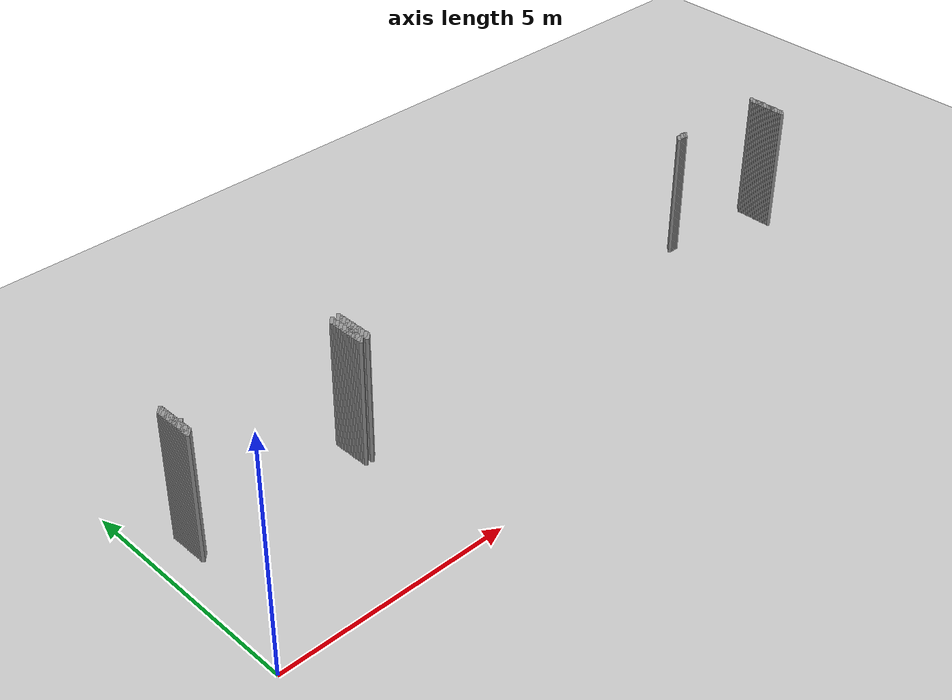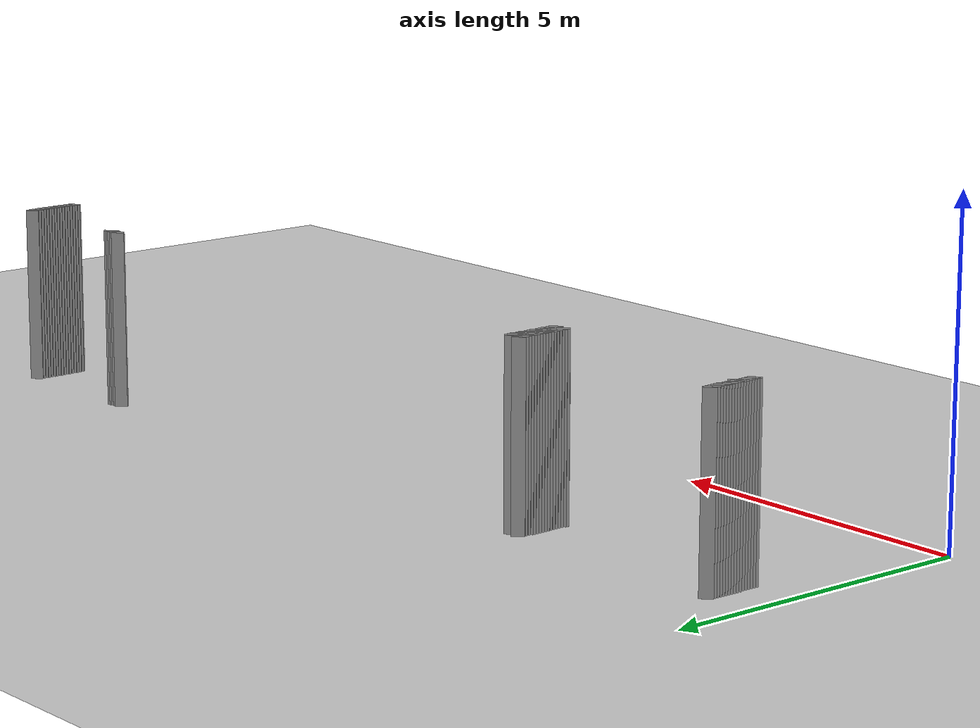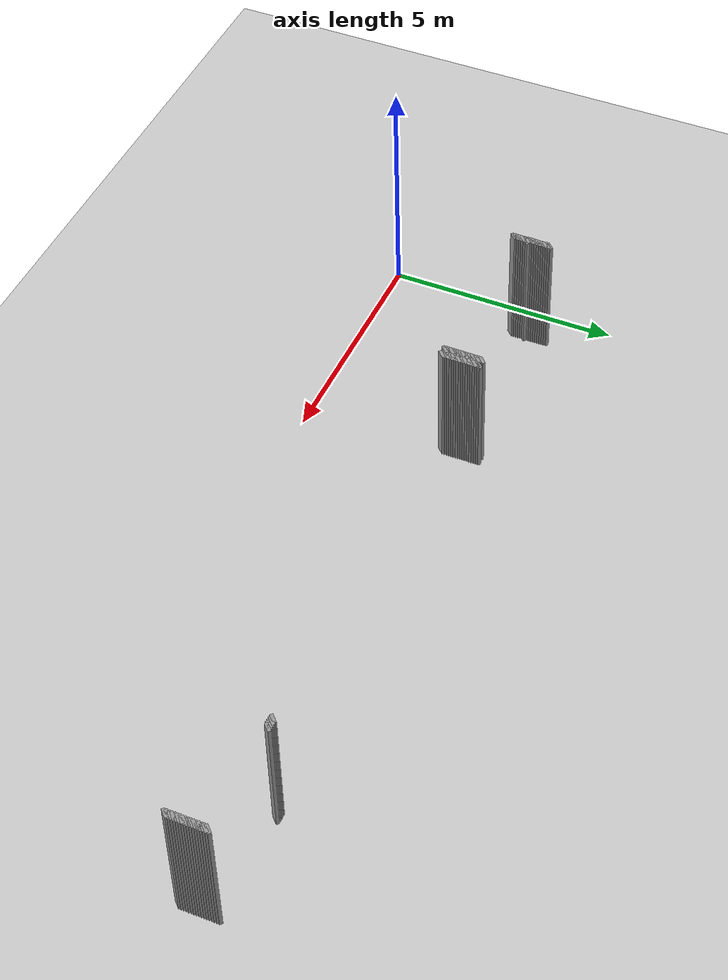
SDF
<sdf version="1.5">
 <world name="default">
  <include><uri>model://ground_plane</uri></include>
  <include><uri>model://sun</uri></include>
  <model name="grey_wall_2294">
   <static>1</static>
   <link name="link">
    <pose>14.0 3.85  1.4 0 0 -0.7853981633974394</pose>
    <collision name="collision">
     <geometry><box><size>0.07071067811865513 .2  2.8</size></box></geometry>
    </collision>
    <visual name="visual">
     <cast_shadows>0</cast_shadows>
     <geometry><box><size>0.07071067811865513 .2  2.8</size></box></geometry>
     <material>
      <script>
       <uri>model://grey_wall/materials/scripts</uri>
       <uri>model://grey_wall/materials/textures</uri>
       <name>vrc/grey_wall</name>
      </script>
     </material>
    </visual>
   </link>
  </model>
  <model name="grey_wall_2295">
   <static>1</static>
   <link name="link">
    <pose>14.05 3.85  1.4 0 0 -0.7853981633974394</pose>
    <collision name="collision">
     <geometry><box><size>0.07071067811865513 .2  2.8</size></box></geometry>
    </collision>
    <visual name="visual">
     <cast_shadows>0</cast_shadows>
     <geometry><box><size>0.07071067811865513 .2  2.8</size></box></geometry>
     <material>
      <script>
       <uri>model://grey_wall/materials/scripts</uri>
       <uri>model://grey_wall/materials/textures</uri>
       <name>vrc/grey_wall</name>
      </script>
     </material>
    </visual>
   </link>
  </model>
  <model name="grey_wall_2296">
   <static>1</static>
   <link name="link">
    <pose>14.100000000000001 3.85  1.4 0 0 -0.7853981633974394</pose>
    <collision name="collision">
     <geometry><box><size>0.07071067811865513 .2  2.8</size></box></geometry>
    </collision>
    <visual name="visual">
     <cast_shadows>0</cast_shadows>
     <geometry><box><size>0.07071067811865513 .2  2.8</size></box></geometry>
     <material>
      <script>
       <uri>model://grey_wall/materials/scripts</uri>
       <uri>model://grey_wall/materials/textures</uri>
       <name>vrc/grey_wall</name>
      </script>
     </material>
    </visual>
   </link>
  </model>
  <model name="grey_wall_2297">
   <static>1</static>
   <link name="link">
    <pose>14.15 3.85  1.4 0 0 -0.7853981633974394</pose>
    <collision name="collision">
     <geometry><box><size>0.07071067811865513 .2  2.8</size></box></geometry>
    </collision>
    <visual name="visual">
     <cast_shadows>0</cast_shadows>
     <geometry><box><size>0.07071067811865513 .2  2.8</size></box></geometry>
     <material>
      <script>
       <uri>model://grey_wall/materials/scripts</uri>
       <uri>model://grey_wall/materials/textures</uri>
       <name>vrc/grey_wall</name>
      </script>
     </material>
    </visual>
   </link>
  </model>
  <model name="grey_wall_2298">
   <static>1</static>
   <link name="link">
    <pose>14.200000000000001 3.85  1.4 0 0 -0.7853981633974394</pose>
    <collision name="collision">
     <geometry><box><size>0.07071067811865513 .2  2.8</size></box></geometry>
    </collision>
    <visual name="visual">
     <cast_shadows>0</cast_shadows>
     <geometry><box><size>0.07071067811865513 .2  2.8</size></box></geometry>
     <material>
      <script>
       <uri>model://grey_wall/materials/scripts</uri>
       <uri>model://grey_wall/materials/textures</uri>
       <name>vrc/grey_wall</name>
      </script>
     </material>
    </visual>
   </link>
  </model>
  <model name="grey_wall_2299">
   <static>1</static>
   <link name="link">
    <pose>16.45 3.85  1.4 0 0 -0.7853981633974749</pose>
    <collision name="collision">
     <geometry><box><size>0.07071067811865261 .2  2.8</size></box></geometry>
    </collision>
    <visual name="visual">
     <cast_shadows>0</cast_shadows>
     <geometry><box><size>0.07071067811865261 .2  2.8</size></box></geometry>
     <material>
      <script>
       <uri>model://grey_wall/materials/scripts</uri>
       <uri>model://grey_wall/materials/textures</uri>
       <name>vrc/grey_wall</name>
      </script>
     </material>
    </visual>
   </link>
  </model>
  <model name="grey_wall_2300">
   <static>1</static>
   <link name="link">
    <pose>0.75 3.8000000000000003  1.4 0 0 -0.7853981633974461</pose>
    <collision name="collision">
     <geometry><box><size>0.07071067811865465 .2  2.8</size></box></geometry>
    </collision>
    <visual name="visual">
     <cast_shadows>0</cast_shadows>
     <geometry><box><size>0.07071067811865465 .2  2.8</size></box></geometry>
     <material>
      <script>
       <uri>model://grey_wall/materials/scripts</uri>
       <uri>model://grey_wall/materials/textures</uri>
       <name>vrc/grey_wall</name>
      </script>
     </material>
    </visual>
   </link>
  </model>
  <model name="grey_wall_2301">
   <static>1</static>
   <link name="link">
    <pose>4.45 3.8000000000000003  1.4 0 0 -0.7853981633974394</pose>
    <collision name="collision">
     <geometry><box><size>0.07071067811865513 .2  2.8</size></box></geometry>
    </collision>
    <visual name="visual">
     <cast_shadows>0</cast_shadows>
     <geometry><box><size>0.07071067811865513 .2  2.8</size></box></geometry>
     <material>
      <script>
       <uri>model://grey_wall/materials/scripts</uri>
       <uri>model://grey_wall/materials/textures</uri>
       <name>vrc/grey_wall</name>
      </script>
     </material>
    </visual>
   </link>
  </model>
  <model name="grey_wall_2302">
   <static>1</static>
   <link name="link">
    <pose>4.6000000000000005 3.8000000000000003  1.4 0 0 -0.7853981633974394</pose>
    <collision name="collision">
     <geometry><box><size>0.07071067811865513 .2  2.8</size></box></geometry>
    </collision>
    <visual name="visual">
     <cast_shadows>0</cast_shadows>
     <geometry><box><size>0.07071067811865513 .2  2.8</size></box></geometry>
     <material>
      <script>
       <uri>model://grey_wall/materials/scripts</uri>
       <uri>model://grey_wall/materials/textures</uri>
       <name>vrc/grey_wall</name>
      </script>
     </material>
    </visual>
   </link>
  </model>
  <model name="grey_wall_2303">
   <static>1</static>
   <link name="link">
    <pose>16.45 3.8000000000000003  1.4 0 0 -0.7853981633974749</pose>
    <collision name="collision">
     <geometry><box><size>0.07071067811865261 .2  2.8</size></box></geometry>
    </collision>
    <visual name="visual">
     <cast_shadows>0</cast_shadows>
     <geometry><box><size>0.07071067811865261 .2  2.8</size></box></geometry>
     <material>
      <script>
       <uri>model://grey_wall/materials/scripts</uri>
       <uri>model://grey_wall/materials/textures</uri>
       <name>vrc/grey_wall</name>
      </script>
     </material>
    </visual>
   </link>
  </model>
  <model name="grey_wall_2304">
   <static>1</static>
   <link name="link">
    <pose>0.75 3.75  1.4 0 0 -0.7853981633974461</pose>
    <collision name="collision">
     <geometry><box><size>0.07071067811865465 .2  2.8</size></box></geometry>
    </collision>
    <visual name="visual">
     <cast_shadows>0</cast_shadows>
     <geometry><box><size>0.07071067811865465 .2  2.8</size></box></geometry>
     <material>
      <script>
       <uri>model://grey_wall/materials/scripts</uri>
       <uri>model://grey_wall/materials/textures</uri>
       <name>vrc/grey_wall</name>
      </script>
     </material>
    </visual>
   </link>
  </model>
  <model name="grey_wall_2305">
   <static>1</static>
   <link name="link">
    <pose>4.45 3.75  1.4 0 0 -0.7853981633974394</pose>
    <collision name="collision">
     <geometry><box><size>0.07071067811865513 .2  2.8</size></box></geometry>
    </collision>
    <visual name="visual">
     <cast_shadows>0</cast_shadows>
     <geometry><box><size>0.07071067811865513 .2  2.8</size></box></geometry>
     <material>
      <script>
       <uri>model://grey_wall/materials/scripts</uri>
       <uri>model://grey_wall/materials/textures</uri>
       <name>vrc/grey_wall</name>
      </script>
     </material>
    </visual>
   </link>
  </model>
  <model name="grey_wall_2306">
   <static>1</static>
   <link name="link">
    <pose>4.6000000000000005 3.75  1.4 0 0 -0.7853981633974394</pose>
    <collision name="collision">
     <geometry><box><size>0.07071067811865513 .2  2.8</size></box></geometry>
    </collision>
    <visual name="visual">
     <cast_shadows>0</cast_shadows>
     <geometry><box><size>0.07071067811865513 .2  2.8</size></box></geometry>
     <material>
      <script>
       <uri>model://grey_wall/materials/scripts</uri>
       <uri>model://grey_wall/materials/textures</uri>
       <name>vrc/grey_wall</name>
      </script>
     </material>
    </visual>
   </link>
  </model>
  <model name="grey_wall_2307">
   <static>1</static>
   <link name="link">
    <pose>16.45 3.75  1.4 0 0 -0.7853981633974749</pose>
    <collision name="collision">
     <geometry><box><size>0.07071067811865261 .2  2.8</size></box></geometry>
    </collision>
    <visual name="visual">
     <cast_shadows>0</cast_shadows>
     <geometry><box><size>0.07071067811865261 .2  2.8</size></box></geometry>
     <material>
      <script>
       <uri>model://grey_wall/materials/scripts</uri>
       <uri>model://grey_wall/materials/textures</uri>
       <name>vrc/grey_wall</name>
      </script>
     </material>
    </visual>
   </link>
  </model>
  <model name="grey_wall_2308">
   <static>1</static>
   <link name="link">
    <pose>0.75 3.7  1.4 0 0 -0.7853981633974461</pose>
    <collision name="collision">
     <geometry><box><size>0.07071067811865465 .2  2.8</size></box></geometry>
    </collision>
    <visual name="visual">
     <cast_shadows>0</cast_shadows>
     <geometry><box><size>0.07071067811865465 .2  2.8</size></box></geometry>
     <material>
      <script>
       <uri>model://grey_wall/materials/scripts</uri>
       <uri>model://grey_wall/materials/textures</uri>
       <name>vrc/grey_wall</name>
      </script>
     </material>
    </visual>
   </link>
  </model>
  <model name="grey_wall_2309">
   <static>1</static>
   <link name="link">
    <pose>4.45 3.7  1.4 0 0 -0.7853981633974394</pose>
    <collision name="collision">
     <geometry><box><size>0.07071067811865513 .2  2.8</size></box></geometry>
    </collision>
    <visual name="visual">
     <cast_shadows>0</cast_shadows>
     <geometry><box><size>0.07071067811865513 .2  2.8</size></box></geometry>
     <material>
      <script>
       <uri>model://grey_wall/materials/scripts</uri>
       <uri>model://grey_wall/materials/textures</uri>
       <name>vrc/grey_wall</name>
      </script>
     </material>
    </visual>
   </link>
  </model>
  <model name="grey_wall_2310">
   <static>1</static>
   <link name="link">
    <pose>4.6000000000000005 3.7  1.4 0 0 -0.7853981633974394</pose>
    <collision name="collision">
     <geometry><box><size>0.07071067811865513 .2  2.8</size></box></geometry>
    </collision>
    <visual name="visual">
     <cast_shadows>0</cast_shadows>
     <geometry><box><size>0.07071067811865513 .2  2.8</size></box></geometry>
     <material>
      <script>
       <uri>model://grey_wall/materials/scripts</uri>
       <uri>model://grey_wall/materials/textures</uri>
       <name>vrc/grey_wall</name>
      </script>
     </material>
    </visual>
   </link>
  </model>
  <model name="grey_wall_2311">
   <static>1</static>
   <link name="link">
    <pose>16.45 3.7  1.4 0 0 -0.7853981633974749</pose>
    <collision name="collision">
     <geometry><box><size>0.07071067811865261 .2  2.8</size></box></geometry>
    </collision>
    <visual name="visual">
     <cast_shadows>0</cast_shadows>
     <geometry><box><size>0.07071067811865261 .2  2.8</size></box></geometry>
     <material>
      <script>
       <uri>model://grey_wall/materials/scripts</uri>
       <uri>model://grey_wall/materials/textures</uri>
       <name>vrc/grey_wall</name>
      </script>
     </material>
    </visual>
   </link>
  </model>
  <model name="grey_wall_2312">
   <static>1</static>
   <link name="link">
    <pose>0.75 3.6500000000000004  1.4 0 0 -0.7853981633974461</pose>
    <collision name="collision">
     <geometry><box><size>0.07071067811865465 .2  2.8</size></box></geometry>
    </collision>
    <visual name="visual">
     <cast_shadows>0</cast_shadows>
     <geometry><box><size>0.07071067811865465 .2  2.8</size></box></geometry>
     <material>
      <script>
       <uri>model://grey_wall/materials/scripts</uri>
       <uri>model://grey_wall/materials/textures</uri>
       <name>vrc/grey_wall</name>
      </script>
     </material>
    </visual>
   </link>
  </model>
  <model name="grey_wall_2313">
   <static>1</static>
   <link name="link">
    <pose>4.45 3.6500000000000004  1.4 0 0 -0.7853981633974394</pose>
    <collision name="collision">
     <geometry><box><size>0.07071067811865513 .2  2.8</size></box></geometry>
    </collision>
    <visual name="visual">
     <cast_shadows>0</cast_shadows>
     <geometry><box><size>0.07071067811865513 .2  2.8</size></box></geometry>
     <material>
      <script>
       <uri>model://grey_wall/materials/scripts</uri>
       <uri>model://grey_wall/materials/textures</uri>
       <name>vrc/grey_wall</name>
      </script>
     </material>
    </visual>
   </link>
  </model>
  <model name="grey_wall_2314">
   <static>1</static>
   <link name="link">
    <pose>4.6000000000000005 3.6500000000000004  1.4 0 0 -0.7853981633974394</pose>
    <collision name="collision">
     <geometry><box><size>0.07071067811865513 .2  2.8</size></box></geometry>
    </collision>
    <visual name="visual">
     <cast_shadows>0</cast_shadows>
     <geometry><box><size>0.07071067811865513 .2  2.8</size></box></geometry>
     <material>
      <script>
       <uri>model://grey_wall/materials/scripts</uri>
       <uri>model://grey_wall/materials/textures</uri>
       <name>vrc/grey_wall</name>
      </script>
     </material>
    </visual>
   </link>
  </model>
  <model name="grey_wall_2315">
   <static>1</static>
   <link name="link">
    <pose>16.45 3.6500000000000004  1.4 0 0 -0.7853981633974749</pose>
    <collision name="collision">
     <geometry><box><size>0.07071067811865261 .2  2.8</size></box></geometry>
    </collision>
    <visual name="visual">
     <cast_shadows>0</cast_shadows>
     <geometry><box><size>0.07071067811865261 .2  2.8</size></box></geometry>
     <material>
      <script>
       <uri>model://grey_wall/materials/scripts</uri>
       <uri>model://grey_wall/materials/textures</uri>
       <name>vrc/grey_wall</name>
      </script>
     </material>
    </visual>
   </link>
  </model>
  <model name="grey_wall_2316">
   <static>1</static>
   <link name="link">
    <pose>0.75 3.6  1.4 0 0 -0.7853981633974461</pose>
    <collision name="collision">
     <geometry><box><size>0.07071067811865465 .2  2.8</size></box></geometry>
    </collision>
    <visual name="visual">
     <cast_shadows>0</cast_shadows>
     <geometry><box><size>0.07071067811865465 .2  2.8</size></box></geometry>
     <material>
      <script>
       <uri>model://grey_wall/materials/scripts</uri>
       <uri>model://grey_wall/materials/textures</uri>
       <name>vrc/grey_wall</name>
      </script>
     </material>
    </visual>
   </link>
  </model>
  <model name="grey_wall_2317">
   <static>1</static>
   <link name="link">
    <pose>4.45 3.6  1.4 0 0 -0.7853981633974394</pose>
    <collision name="collision">
     <geometry><box><size>0.07071067811865513 .2  2.8</size></box></geometry>
    </collision>
    <visual name="visual">
     <cast_shadows>0</cast_shadows>
     <geometry><box><size>0.07071067811865513 .2  2.8</size></box></geometry>
     <material>
      <script>
       <uri>model://grey_wall/materials/scripts</uri>
       <uri>model://grey_wall/materials/textures</uri>
       <name>vrc/grey_wall</name>
      </script>
     </material>
    </visual>
   </link>
  </model>
  <model name="grey_wall_2318">
   <static>1</static>
   <link name="link">
    <pose>4.6000000000000005 3.6  1.4 0 0 -0.7853981633974394</pose>
    <collision name="collision">
     <geometry><box><size>0.07071067811865513 .2  2.8</size></box></geometry>
    </collision>
    <visual name="visual">
     <cast_shadows>0</cast_shadows>
     <geometry><box><size>0.07071067811865513 .2  2.8</size></box></geometry>
     <material>
      <script>
       <uri>model://grey_wall/materials/scripts</uri>
       <uri>model://grey_wall/materials/textures</uri>
       <name>vrc/grey_wall</name>
      </script>
     </material>
    </visual>
   </link>
  </model>
  <model name="grey_wall_2319">
   <static>1</static>
   <link name="link">
    <pose>16.45 3.6  1.4 0 0 -0.7853981633974749</pose>
    <collision name="collision">
     <geometry><box><size>0.07071067811865261 .2  2.8</size></box></geometry>
    </collision>
    <visual name="visual">
     <cast_shadows>0</cast_shadows>
     <geometry><box><size>0.07071067811865261 .2  2.8</size></box></geometry>
     <material>
      <script>
       <uri>model://grey_wall/materials/scripts</uri>
       <uri>model://grey_wall/materials/textures</uri>
       <name>vrc/grey_wall</name>
      </script>
     </material>
    </visual>
   </link>
  </model>
  <model name="grey_wall_2320">
   <static>1</static>
   <link name="link">
    <pose>0.75 3.5500000000000003  1.4 0 0 -0.7853981633974461</pose>
    <collision name="collision">
     <geometry><box><size>0.07071067811865465 .2  2.8</size></box></geometry>
    </collision>
    <visual name="visual">
     <cast_shadows>0</cast_shadows>
     <geometry><box><size>0.07071067811865465 .2  2.8</size></box></geometry>
     <material>
      <script>
       <uri>model://grey_wall/materials/scripts</uri>
       <uri>model://grey_wall/materials/textures</uri>
       <name>vrc/grey_wall</name>
      </script>
     </material>
    </visual>
   </link>
  </model>
  <model name="grey_wall_2321">
   <static>1</static>
   <link name="link">
    <pose>4.45 3.5500000000000003  1.4 0 0 -0.7853981633974394</pose>
    <collision name="collision">
     <geometry><box><size>0.07071067811865513 .2  2.8</size></box></geometry>
    </collision>
    <visual name="visual">
     <cast_shadows>0</cast_shadows>
     <geometry><box><size>0.07071067811865513 .2  2.8</size></box></geometry>
     <material>
      <script>
       <uri>model://grey_wall/materials/scripts</uri>
       <uri>model://grey_wall/materials/textures</uri>
       <name>vrc/grey_wall</name>
      </script>
     </material>
    </visual>
   </link>
  </model>
  <model name="grey_wall_2322">
   <static>1</static>
   <link name="link">
    <pose>4.6000000000000005 3.5500000000000003  1.4 0 0 -0.7853981633974394</pose>
    <collision name="collision">
     <geometry><box><size>0.07071067811865513 .2  2.8</size></box></geometry>
    </collision>
    <visual name="visual">
     <cast_shadows>0</cast_shadows>
     <geometry><box><size>0.07071067811865513 .2  2.8</size></box></geometry>
     <material>
      <script>
       <uri>model://grey_wall/materials/scripts</uri>
       <uri>model://grey_wall/materials/textures</uri>
       <name>vrc/grey_wall</name>
      </script>
     </material>
    </visual>
   </link>
  </model>
  <model name="grey_wall_2323">
   <static>1</static>
   <link name="link">
    <pose>16.45 3.5500000000000003  1.4 0 0 -0.7853981633974749</pose>
    <collision name="collision">
     <geometry><box><size>0.07071067811865261 .2  2.8</size></box></geometry>
    </collision>
    <visual name="visual">
     <cast_shadows>0</cast_shadows>
     <geometry><box><size>0.07071067811865261 .2  2.8</size></box></geometry>
     <material>
      <script>
       <uri>model://grey_wall/materials/scripts</uri>
       <uri>model://grey_wall/materials/textures</uri>
       <name>vrc/grey_wall</name>
      </script>
     </material>
    </visual>
   </link>
  </model>
  <model name="grey_wall_2324">
   <static>1</static>
   <link name="link">
    <pose>0.75 3.5  1.4 0 0 -0.7853981633974461</pose>
    <collision name="collision">
     <geometry><box><size>0.07071067811865465 .2  2.8</size></box></geometry>
    </collision>
    <visual name="visual">
     <cast_shadows>0</cast_shadows>
     <geometry><box><size>0.07071067811865465 .2  2.8</size></box></geometry>
     <material>
      <script>
       <uri>model://grey_wall/materials/scripts</uri>
       <uri>model://grey_wall/materials/textures</uri>
       <name>vrc/grey_wall</name>
      </script>
     </material>
    </visual>
   </link>
  </model>
  <model name="grey_wall_2325">
   <static>1</static>
   <link name="link">
    <pose>4.45 3.5  1.4 0 0 -0.7853981633974394</pose>
    <collision name="collision">
     <geometry><box><size>0.07071067811865513 .2  2.8</size></box></geometry>
    </collision>
    <visual name="visual">
     <cast_shadows>0</cast_shadows>
     <geometry><box><size>0.07071067811865513 .2  2.8</size></box></geometry>
     <material>
      <script>
       <uri>model://grey_wall/materials/scripts</uri>
       <uri>model://grey_wall/materials/textures</uri>
       <name>vrc/grey_wall</name>
      </script>
     </material>
    </visual>
   </link>
  </model>
  <model name="grey_wall_2326">
   <static>1</static>
   <link name="link">
    <pose>4.6000000000000005 3.5  1.4 0 0 -0.7853981633974394</pose>
    <collision name="collision">
     <geometry><box><size>0.07071067811865513 .2  2.8</size></box></geometry>
    </collision>
    <visual name="visual">
     <cast_shadows>0</cast_shadows>
     <geometry><box><size>0.07071067811865513 .2  2.8</size></box></geometry>
     <material>
      <script>
       <uri>model://grey_wall/materials/scripts</uri>
       <uri>model://grey_wall/materials/textures</uri>
       <name>vrc/grey_wall</name>
      </script>
     </material>
    </visual>
   </link>
  </model>
  <model name="grey_wall_2327">
   <static>1</static>
   <link name="link">
    <pose>16.45 3.5  1.4 0 0 -0.7853981633974749</pose>
    <collision name="collision">
     <geometry><box><size>0.07071067811865261 .2  2.8</size></box></geometry>
    </collision>
    <visual name="visual">
     <cast_shadows>0</cast_shadows>
     <geometry><box><size>0.07071067811865261 .2  2.8</size></box></geometry>
     <material>
      <script>
       <uri>model://grey_wall/materials/scripts</uri>
       <uri>model://grey_wall/materials/textures</uri>
       <name>vrc/grey_wall</name>
      </script>
     </material>
    </visual>
   </link>
  </model>
  <model name="grey_wall_2328">
   <static>1</static>
   <link name="link">
    <pose>0.75 3.45  1.4 0 0 -0.7853981633974461</pose>
    <collision name="collision">
     <geometry><box><size>0.07071067811865465 .2  2.8</size></box></geometry>
    </collision>
    <visual name="visual">
     <cast_shadows>0</cast_shadows>
     <geometry><box><size>0.07071067811865465 .2  2.8</size></box></geometry>
     <material>
      <script>
       <uri>model://grey_wall/materials/scripts</uri>
       <uri>model://grey_wall/materials/textures</uri>
       <name>vrc/grey_wall</name>
      </script>
     </material>
    </visual>
   </link>
  </model>
  <model name="grey_wall_2329">
   <static>1</static>
   <link name="link">
    <pose>4.45 3.45  1.4 0 0 -0.7853981633974394</pose>
    <collision name="collision">
     <geometry><box><size>0.07071067811865513 .2  2.8</size></box></geometry>
    </collision>
    <visual name="visual">
     <cast_shadows>0</cast_shadows>
     <geometry><box><size>0.07071067811865513 .2  2.8</size></box></geometry>
     <material>
      <script>
       <uri>model://grey_wall/materials/scripts</uri>
       <uri>model://grey_wall/materials/textures</uri>
       <name>vrc/grey_wall</name>
      </script>
     </material>
    </visual>
   </link>
  </model>
  <model name="grey_wall_2330">
   <static>1</static>
   <link name="link">
    <pose>4.6000000000000005 3.45  1.4 0 0 -0.7853981633974394</pose>
    <collision name="collision">
     <geometry><box><size>0.07071067811865513 .2  2.8</size></box></geometry>
    </collision>
    <visual name="visual">
     <cast_shadows>0</cast_shadows>
     <geometry><box><size>0.07071067811865513 .2  2.8</size></box></geometry>
     <material>
      <script>
       <uri>model://grey_wall/materials/scripts</uri>
       <uri>model://grey_wall/materials/textures</uri>
       <name>vrc/grey_wall</name>
      </script>
     </material>
    </visual>
   </link>
  </model>
  <model name="grey_wall_2331">
   <static>1</static>
   <link name="link">
    <pose>16.45 3.45  1.4 0 0 -0.7853981633974749</pose>
    <collision name="collision">
     <geometry><box><size>0.07071067811865261 .2  2.8</size></box></geometry>
    </collision>
    <visual name="visual">
     <cast_shadows>0</cast_shadows>
     <geometry><box><size>0.07071067811865261 .2  2.8</size></box></geometry>
     <material>
      <script>
       <uri>model://grey_wall/materials/scripts</uri>
       <uri>model://grey_wall/materials/textures</uri>
       <name>vrc/grey_wall</name>
      </script>
     </material>
    </visual>
   </link>
  </model>
  <model name="grey_wall_2332">
   <static>1</static>
   <link name="link">
    <pose>0.75 3.4000000000000004  1.4 0 0 -0.7853981633974461</pose>
    <collision name="collision">
     <geometry><box><size>0.07071067811865465 .2  2.8</size></box></geometry>
    </collision>
    <visual name="visual">
     <cast_shadows>0</cast_shadows>
     <geometry><box><size>0.07071067811865465 .2  2.8</size></box></geometry>
     <material>
      <script>
       <uri>model://grey_wall/materials/scripts</uri>
       <uri>model://grey_wall/materials/textures</uri>
       <name>vrc/grey_wall</name>
      </script>
     </material>
    </visual>
   </link>
  </model>
  <model name="grey_wall_2333">
   <static>1</static>
   <link name="link">
    <pose>4.45 3.4000000000000004  1.4 0 0 -0.7853981633974394</pose>
    <collision name="collision">
     <geometry><box><size>0.07071067811865513 .2  2.8</size></box></geometry>
    </collision>
    <visual name="visual">
     <cast_shadows>0</cast_shadows>
     <geometry><box><size>0.07071067811865513 .2  2.8</size></box></geometry>
     <material>
      <script>
       <uri>model://grey_wall/materials/scripts</uri>
       <uri>model://grey_wall/materials/textures</uri>
       <name>vrc/grey_wall</name>
      </script>
     </material>
    </visual>
   </link>
  </model>
  <model name="grey_wall_2334">
   <static>1</static>
   <link name="link">
    <pose>4.6000000000000005 3.4000000000000004  1.4 0 0 -0.7853981633974394</pose>
    <collision name="collision">
     <geometry><box><size>0.07071067811865513 .2  2.8</size></box></geometry>
    </collision>
    <visual name="visual">
     <cast_shadows>0</cast_shadows>
     <geometry><box><size>0.07071067811865513 .2  2.8</size></box></geometry>
     <material>
      <script>
       <uri>model://grey_wall/materials/scripts</uri>
       <uri>model://grey_wall/materials/textures</uri>
       <name>vrc/grey_wall</name>
      </script>
     </material>
    </visual>
   </link>
  </model>
  <model name="grey_wall_2335">
   <static>1</static>
   <link name="link">
    <pose>16.45 3.4000000000000004  1.4 0 0 -0.7853981633974749</pose>
    <collision name="collision">
     <geometry><box><size>0.07071067811865261 .2  2.8</size></box></geometry>
    </collision>
    <visual name="visual">
     <cast_shadows>0</cast_shadows>
     <geometry><box><size>0.07071067811865261 .2  2.8</size></box></geometry>
     <material>
      <script>
       <uri>model://grey_wall/materials/scripts</uri>
       <uri>model://grey_wall/materials/textures</uri>
       <name>vrc/grey_wall</name>
      </script>
     </material>
    </visual>
   </link>
  </model>
  <model name="grey_wall_2336">
   <static>1</static>
   <link name="link">
    <pose>0.75 3.35  1.4 0 0 -0.7853981633974461</pose>
    <collision name="collision">
     <geometry><box><size>0.07071067811865465 .2  2.8</size></box></geometry>
    </collision>
    <visual name="visual">
     <cast_shadows>0</cast_shadows>
     <geometry><box><size>0.07071067811865465 .2  2.8</size></box></geometry>
     <material>
      <script>
       <uri>model://grey_wall/materials/scripts</uri>
       <uri>model://grey_wall/materials/textures</uri>
       <name>vrc/grey_wall</name>
      </script>
     </material>
    </visual>
   </link>
  </model>
  <model name="grey_wall_2337">
   <static>1</static>
   <link name="link">
    <pose>4.45 3.35  1.4 0 0 -0.7853981633974394</pose>
    <collision name="collision">
     <geometry><box><size>0.07071067811865513 .2  2.8</size></box></geometry>
    </collision>
    <visual name="visual">
     <cast_shadows>0</cast_shadows>
     <geometry><box><size>0.07071067811865513 .2  2.8</size></box></geometry>
     <material>
      <script>
       <uri>model://grey_wall/materials/scripts</uri>
       <uri>model://grey_wall/materials/textures</uri>
       <name>vrc/grey_wall</name>
      </script>
     </material>
    </visual>
   </link>
  </model>
  <model name="grey_wall_2338">
   <static>1</static>
   <link name="link">
    <pose>4.6000000000000005 3.35  1.4 0 0 -0.7853981633974394</pose>
    <collision name="collision">
     <geometry><box><size>0.07071067811865513 .2  2.8</size></box></geometry>
    </collision>
    <visual name="visual">
     <cast_shadows>0</cast_shadows>
     <geometry><box><size>0.07071067811865513 .2  2.8</size></box></geometry>
     <material>
      <script>
       <uri>model://grey_wall/materials/scripts</uri>
       <uri>model://grey_wall/materials/textures</uri>
       <name>vrc/grey_wall</name>
      </script>
     </material>
    </visual>
   </link>
  </model>
  <model name="grey_wall_2339">
   <static>1</static>
   <link name="link">
    <pose>16.45 3.35  1.4 0 0 -0.7853981633974749</pose>
    <collision name="collision">
     <geometry><box><size>0.07071067811865261 .2  2.8</size></box></geometry>
    </collision>
    <visual name="visual">
     <cast_shadows>0</cast_shadows>
     <geometry><box><size>0.07071067811865261 .2  2.8</size></box></geometry>
     <material>
      <script>
       <uri>model://grey_wall/materials/scripts</uri>
       <uri>model://grey_wall/materials/textures</uri>
       <name>vrc/grey_wall</name>
      </script>
     </material>
    </visual>
   </link>
  </model>
  <model name="grey_wall_2340">
   <static>1</static>
   <link name="link">
    <pose>0.75 3.3000000000000003  1.4 0 0 -0.7853981633974461</pose>
    <collision name="collision">
     <geometry><box><size>0.07071067811865465 .2  2.8</size></box></geometry>
    </collision>
    <visual name="visual">
     <cast_shadows>0</cast_shadows>
     <geometry><box><size>0.07071067811865465 .2  2.8</size></box></geometry>
     <material>
      <script>
       <uri>model://grey_wall/materials/scripts</uri>
       <uri>model://grey_wall/materials/textures</uri>
       <name>vrc/grey_wall</name>
      </script>
     </material>
    </visual>
   </link>
  </model>
  <model name="grey_wall_2341">
   <static>1</static>
   <link name="link">
    <pose>0.8 3.3000000000000003  1.4 0 0 -0.7853981633974461</pose>
    <collision name="collision">
     <geometry><box><size>0.07071067811865465 .2  2.8</size></box></geometry>
    </collision>
    <visual name="visual">
     <cast_shadows>0</cast_shadows>
     <geometry><box><size>0.07071067811865465 .2  2.8</size></box></geometry>
     <material>
      <script>
       <uri>model://grey_wall/materials/scripts</uri>
       <uri>model://grey_wall/materials/textures</uri>
       <name>vrc/grey_wall</name>
      </script>
     </material>
    </visual>
   </link>
  </model>
  <model name="grey_wall_2342">
   <static>1</static>
   <link name="link">
    <pose>4.45 3.3000000000000003  1.4 0 0 -0.7853981633974394</pose>
    <collision name="collision">
     <geometry><box><size>0.07071067811865513 .2  2.8</size></box></geometry>
    </collision>
    <visual name="visual">
     <cast_shadows>0</cast_shadows>
     <geometry><box><size>0.07071067811865513 .2  2.8</size></box></geometry>
     <material>
      <script>
       <uri>model://grey_wall/materials/scripts</uri>
       <uri>model://grey_wall/materials/textures</uri>
       <name>vrc/grey_wall</name>
      </script>
     </material>
    </visual>
   </link>
  </model>
  <model name="grey_wall_2343">
   <static>1</static>
   <link name="link">
    <pose>4.6000000000000005 3.3000000000000003  1.4 0 0 -0.7853981633974394</pose>
    <collision name="collision">
     <geometry><box><size>0.07071067811865513 .2  2.8</size></box></geometry>
    </collision>
    <visual name="visual">
     <cast_shadows>0</cast_shadows>
     <geometry><box><size>0.07071067811865513 .2  2.8</size></box></geometry>
     <material>
      <script>
       <uri>model://grey_wall/materials/scripts</uri>
       <uri>model://grey_wall/materials/textures</uri>
       <name>vrc/grey_wall</name>
      </script>
     </material>
    </visual>
   </link>
  </model>
  <model name="grey_wall_2344">
   <static>1</static>
   <link name="link">
    <pose>16.45 3.3000000000000003  1.4 0 0 -0.7853981633974749</pose>
    <collision name="collision">
     <geometry><box><size>0.07071067811865261 .2  2.8</size></box></geometry>
    </collision>
    <visual name="visual">
     <cast_shadows>0</cast_shadows>
     <geometry><box><size>0.07071067811865261 .2  2.8</size></box></geometry>
     <material>
      <script>
       <uri>model://grey_wall/materials/scripts</uri>
       <uri>model://grey_wall/materials/textures</uri>
       <name>vrc/grey_wall</name>
      </script>
     </material>
    </visual>
   </link>
  </model>
  <model name="grey_wall_2345">
   <static>1</static>
   <link name="link">
    <pose>0.75 3.25  1.4 0 0 -0.7853981633974461</pose>
    <collision name="collision">
     <geometry><box><size>0.07071067811865465 .2  2.8</size></box></geometry>
    </collision>
    <visual name="visual">
     <cast_shadows>0</cast_shadows>
     <geometry><box><size>0.07071067811865465 .2  2.8</size></box></geometry>
     <material>
      <script>
       <uri>model://grey_wall/materials/scripts</uri>
       <uri>model://grey_wall/materials/textures</uri>
       <name>vrc/grey_wall</name>
      </script>
     </material>
    </visual>
   </link>
  </model>
  <model name="grey_wall_2346">
   <static>1</static>
   <link name="link">
    <pose>4.45 3.25  1.4 0 0 -0.7853981633974394</pose>
    <collision name="collision">
     <geometry><box><size>0.07071067811865513 .2  2.8</size></box></geometry>
    </collision>
    <visual name="visual">
     <cast_shadows>0</cast_shadows>
     <geometry><box><size>0.07071067811865513 .2  2.8</size></box></geometry>
     <material>
      <script>
       <uri>model://grey_wall/materials/scripts</uri>
       <uri>model://grey_wall/materials/textures</uri>
       <name>vrc/grey_wall</name>
      </script>
     </material>
    </visual>
   </link>
  </model>
  <model name="grey_wall_2347">
   <static>1</static>
   <link name="link">
    <pose>4.6000000000000005 3.25  1.4 0 0 -0.7853981633974394</pose>
    <collision name="collision">
     <geometry><box><size>0.07071067811865513 .2  2.8</size></box></geometry>
    </collision>
    <visual name="visual">
     <cast_shadows>0</cast_shadows>
     <geometry><box><size>0.07071067811865513 .2  2.8</size></box></geometry>
     <material>
      <script>
       <uri>model://grey_wall/materials/scripts</uri>
       <uri>model://grey_wall/materials/textures</uri>
       <name>vrc/grey_wall</name>
      </script>
     </material>
    </visual>
   </link>
  </model>
  <model name="grey_wall_2348">
   <static>1</static>
   <link name="link">
    <pose>16.45 3.25  1.4 0 0 -0.7853981633974749</pose>
    <collision name="collision">
     <geometry><box><size>0.07071067811865261 .2  2.8</size></box></geometry>
    </collision>
    <visual name="visual">
     <cast_shadows>0</cast_shadows>
     <geometry><box><size>0.07071067811865261 .2  2.8</size></box></geometry>
     <material>
      <script>
       <uri>model://grey_wall/materials/scripts</uri>
       <uri>model://grey_wall/materials/textures</uri>
       <name>vrc/grey_wall</name>
      </script>
     </material>
    </visual>
   </link>
  </model>
  <model name="grey_wall_2349">
   <static>1</static>
   <link name="link">
    <pose>0.75 3.2  1.4 0 0 -0.7853981633974461</pose>
    <collision name="collision">
     <geometry><box><size>0.07071067811865465 .2  2.8</size></box></geometry>
    </collision>
    <visual name="visual">
     <cast_shadows>0</cast_shadows>
     <geometry><box><size>0.07071067811865465 .2  2.8</size></box></geometry>
     <material>
      <script>
       <uri>model://grey_wall/materials/scripts</uri>
       <uri>model://grey_wall/materials/textures</uri>
       <name>vrc/grey_wall</name>
      </script>
     </material>
    </visual>
   </link>
  </model>
  <model name="grey_wall_2350">
   <static>1</static>
   <link name="link">
    <pose>4.45 3.2  1.4 0 0 -0.7853981633974394</pose>
    <collision name="collision">
     <geometry><box><size>0.07071067811865513 .2  2.8</size></box></geometry>
    </collision>
    <visual name="visual">
     <cast_shadows>0</cast_shadows>
     <geometry><box><size>0.07071067811865513 .2  2.8</size></box></geometry>
     <material>
      <script>
       <uri>model://grey_wall/materials/scripts</uri>
       <uri>model://grey_wall/materials/textures</uri>
       <name>vrc/grey_wall</name>
      </script>
     </material>
    </visual>
   </link>
  </model>
  <model name="grey_wall_2351">
   <static>1</static>
   <link name="link">
    <pose>4.6000000000000005 3.2  1.4 0 0 -0.7853981633974394</pose>
    <collision name="collision">
     <geometry><box><size>0.07071067811865513 .2  2.8</size></box></geometry>
    </collision>
    <visual name="visual">
     <cast_shadows>0</cast_shadows>
     <geometry><box><size>0.07071067811865513 .2  2.8</size></box></geometry>
     <material>
      <script>
       <uri>model://grey_wall/materials/scripts</uri>
       <uri>model://grey_wall/materials/textures</uri>
       <name>vrc/grey_wall</name>
      </script>
     </material>
    </visual>
   </link>
  </model>
  <model name="grey_wall_2352">
   <static>1</static>
   <link name="link">
    <pose>16.45 3.2  1.4 0 0 -0.7853981633974749</pose>
    <collision name="collision">
     <geometry><box><size>0.07071067811865261 .2  2.8</size></box></geometry>
    </collision>
    <visual name="visual">
     <cast_shadows>0</cast_shadows>
     <geometry><box><size>0.07071067811865261 .2  2.8</size></box></geometry>
     <material>
      <script>
       <uri>model://grey_wall/materials/scripts</uri>
       <uri>model://grey_wall/materials/textures</uri>
       <name>vrc/grey_wall</name>
      </script>
     </material>
    </visual>
   </link>
  </model>
  <model name="grey_wall_2353">
   <static>1</static>
   <link name="link">
    <pose>0.75 3.1500000000000004  1.4 0 0 -0.7853981633974461</pose>
    <collision name="collision">
     <geometry><box><size>0.07071067811865465 .2  2.8</size></box></geometry>
    </collision>
    <visual name="visual">
     <cast_shadows>0</cast_shadows>
     <geometry><box><size>0.07071067811865465 .2  2.8</size></box></geometry>
     <material>
      <script>
       <uri>model://grey_wall/materials/scripts</uri>
       <uri>model://grey_wall/materials/textures</uri>
       <name>vrc/grey_wall</name>
      </script>
     </material>
    </visual>
   </link>
  </model>
  <model name="grey_wall_2354">
   <static>1</static>
   <link name="link">
    <pose>4.45 3.1500000000000004  1.4 0 0 -0.7853981633974394</pose>
    <collision name="collision">
     <geometry><box><size>0.07071067811865513 .2  2.8</size></box></geometry>
    </collision>
    <visual name="visual">
     <cast_shadows>0</cast_shadows>
     <geometry><box><size>0.07071067811865513 .2  2.8</size></box></geometry>
     <material>
      <script>
       <uri>model://grey_wall/materials/scripts</uri>
       <uri>model://grey_wall/materials/textures</uri>
       <name>vrc/grey_wall</name>
      </script>
     </material>
    </visual>
   </link>
  </model>
  <model name="grey_wall_2355">
   <static>1</static>
   <link name="link">
    <pose>4.6000000000000005 3.1500000000000004  1.4 0 0 -0.7853981633974394</pose>
    <collision name="collision">
     <geometry><box><size>0.07071067811865513 .2  2.8</size></box></geometry>
    </collision>
    <visual name="visual">
     <cast_shadows>0</cast_shadows>
     <geometry><box><size>0.07071067811865513 .2  2.8</size></box></geometry>
     <material>
      <script>
       <uri>model://grey_wall/materials/scripts</uri>
       <uri>model://grey_wall/materials/textures</uri>
       <name>vrc/grey_wall</name>
      </script>
     </material>
    </visual>
   </link>
  </model>
  <model name="grey_wall_2356">
   <static>1</static>
   <link name="link">
    <pose>16.45 3.1500000000000004  1.4 0 0 -0.7853981633974749</pose>
    <collision name="collision">
     <geometry><box><size>0.07071067811865261 .2  2.8</size></box></geometry>
    </collision>
    <visual name="visual">
     <cast_shadows>0</cast_shadows>
     <geometry><box><size>0.07071067811865261 .2  2.8</size></box></geometry>
     <material>
      <script>
       <uri>model://grey_wall/materials/scripts</uri>
       <uri>model://grey_wall/materials/textures</uri>
       <name>vrc/grey_wall</name>
      </script>
     </material>
    </visual>
   </link>
  </model>
  <model name="grey_wall_2357">
   <static>1</static>
   <link name="link">
    <pose>0.75 3.1  1.4 0 0 -0.7853981633974461</pose>
    <collision name="collision">
     <geometry><box><size>0.07071067811865465 .2  2.8</size></box></geometry>
    </collision>
    <visual name="visual">
     <cast_shadows>0</cast_shadows>
     <geometry><box><size>0.07071067811865465 .2  2.8</size></box></geometry>
     <material>
      <script>
       <uri>model://grey_wall/materials/scripts</uri>
       <uri>model://grey_wall/materials/textures</uri>
       <name>vrc/grey_wall</name>
      </script>
     </material>
    </visual>
   </link>
  </model>
  <model name="grey_wall_2358">
   <static>1</static>
   <link name="link">
    <pose>4.45 3.1  1.4 0 0 -0.7853981633974394</pose>
    <collision name="collision">
     <geometry><box><size>0.07071067811865513 .2  2.8</size></box></geometry>
    </collision>
    <visual name="visual">
     <cast_shadows>0</cast_shadows>
     <geometry><box><size>0.07071067811865513 .2  2.8</size></box></geometry>
     <material>
      <script>
       <uri>model://grey_wall/materials/scripts</uri>
       <uri>model://grey_wall/materials/textures</uri>
       <name>vrc/grey_wall</name>
      </script>
     </material>
    </visual>
   </link>
  </model>
  <model name="grey_wall_2359">
   <static>1</static>
   <link name="link">
    <pose>4.6000000000000005 3.1  1.4 0 0 -0.7853981633974394</pose>
    <collision name="collision">
     <geometry><box><size>0.07071067811865513 .2  2.8</size></box></geometry>
    </collision>
    <visual name="visual">
     <cast_shadows>0</cast_shadows>
     <geometry><box><size>0.07071067811865513 .2  2.8</size></box></geometry>
     <material>
      <script>
       <uri>model://grey_wall/materials/scripts</uri>
       <uri>model://grey_wall/materials/textures</uri>
       <name>vrc/grey_wall</name>
      </script>
     </material>
    </visual>
   </link>
  </model>
  <model name="grey_wall_2360">
   <static>1</static>
   <link name="link">
    <pose>16.45 3.1  1.4 0 0 -0.7853981633974749</pose>
    <collision name="collision">
     <geometry><box><size>0.07071067811865261 .2  2.8</size></box></geometry>
    </collision>
    <visual name="visual">
     <cast_shadows>0</cast_shadows>
     <geometry><box><size>0.07071067811865261 .2  2.8</size></box></geometry>
     <material>
      <script>
       <uri>model://grey_wall/materials/scripts</uri>
       <uri>model://grey_wall/materials/textures</uri>
       <name>vrc/grey_wall</name>
      </script>
     </material>
    </visual>
   </link>
  </model>
  <model name="grey_wall_2361">
   <static>1</static>
   <link name="link">
    <pose>0.75 3.0500000000000003  1.4 0 0 -0.7853981633974461</pose>
    <collision name="collision">
     <geometry><box><size>0.07071067811865465 .2  2.8</size></box></geometry>
    </collision>
    <visual name="visual">
     <cast_shadows>0</cast_shadows>
     <geometry><box><size>0.07071067811865465 .2  2.8</size></box></geometry>
     <material>
      <script>
       <uri>model://grey_wall/materials/scripts</uri>
       <uri>model://grey_wall/materials/textures</uri>
       <name>vrc/grey_wall</name>
      </script>
     </material>
    </visual>
   </link>
  </model>
  <model name="grey_wall_2362">
   <static>1</static>
   <link name="link">
    <pose>4.45 3.0500000000000003  1.4 0 0 -0.7853981633974394</pose>
    <collision name="collision">
     <geometry><box><size>0.07071067811865513 .2  2.8</size></box></geometry>
    </collision>
    <visual name="visual">
     <cast_shadows>0</cast_shadows>
     <geometry><box><size>0.07071067811865513 .2  2.8</size></box></geometry>
     <material>
      <script>
       <uri>model://grey_wall/materials/scripts</uri>
       <uri>model://grey_wall/materials/textures</uri>
       <name>vrc/grey_wall</name>
      </script>
     </material>
    </visual>
   </link>
  </model>
  <model name="grey_wall_2363">
   <static>1</static>
   <link name="link">
    <pose>4.6000000000000005 3.0500000000000003  1.4 0 0 -0.7853981633974394</pose>
    <collision name="collision">
     <geometry><box><size>0.07071067811865513 .2  2.8</size></box></geometry>
    </collision>
    <visual name="visual">
     <cast_shadows>0</cast_shadows>
     <geometry><box><size>0.07071067811865513 .2  2.8</size></box></geometry>
     <material>
      <script>
       <uri>model://grey_wall/materials/scripts</uri>
       <uri>model://grey_wall/materials/textures</uri>
       <name>vrc/grey_wall</name>
      </script>
     </material>
    </visual>
   </link>
  </model>
  <model name="grey_wall_2364">
   <static>1</static>
   <link name="link">
    <pose>16.45 3.0500000000000003  1.4 0 0 -0.7853981633974749</pose>
    <collision name="collision">
     <geometry><box><size>0.07071067811865261 .2  2.8</size></box></geometry>
    </collision>
    <visual name="visual">
     <cast_shadows>0</cast_shadows>
     <geometry><box><size>0.07071067811865261 .2  2.8</size></box></geometry>
     <material>
      <script>
       <uri>model://grey_wall/materials/scripts</uri>
       <uri>model://grey_wall/materials/textures</uri>
       <name>vrc/grey_wall</name>
      </script>
     </material>
    </visual>
   </link>
  </model>
  <model name="grey_wall_2365">
   <static>1</static>
   <link name="link">
    <pose>0.75 3.0  1.4 0 0 -0.7853981633974461</pose>
    <collision name="collision">
     <geometry><box><size>0.07071067811865465 .2  2.8</size></box></geometry>
    </collision>
    <visual name="visual">
     <cast_shadows>0</cast_shadows>
     <geometry><box><size>0.07071067811865465 .2  2.8</size></box></geometry>
     <material>
      <script>
       <uri>model://grey_wall/materials/scripts</uri>
       <uri>model://grey_wall/materials/textures</uri>
       <name>vrc/grey_wall</name>
      </script>
     </material>
    </visual>
   </link>
  </model>
  <model name="grey_wall_2366">
   <static>1</static>
   <link name="link">
    <pose>4.45 3.0  1.4 0 0 -0.7853981633974394</pose>
    <collision name="collision">
     <geometry><box><size>0.07071067811865513 .2  2.8</size></box></geometry>
    </collision>
    <visual name="visual">
     <cast_shadows>0</cast_shadows>
     <geometry><box><size>0.07071067811865513 .2  2.8</size></box></geometry>
     <material>
      <script>
       <uri>model://grey_wall/materials/scripts</uri>
       <uri>model://grey_wall/materials/textures</uri>
       <name>vrc/grey_wall</name>
      </script>
     </material>
    </visual>
   </link>
  </model>
  <model name="grey_wall_2367">
   <static>1</static>
   <link name="link">
    <pose>4.6000000000000005 3.0  1.4 0 0 -0.7853981633974394</pose>
    <collision name="collision">
     <geometry><box><size>0.07071067811865513 .2  2.8</size></box></geometry>
    </collision>
    <visual name="visual">
     <cast_shadows>0</cast_shadows>
     <geometry><box><size>0.07071067811865513 .2  2.8</size></box></geometry>
     <material>
      <script>
       <uri>model://grey_wall/materials/scripts</uri>
       <uri>model://grey_wall/materials/textures</uri>
       <name>vrc/grey_wall</name>
      </script>
     </material>
    </visual>
   </link>
  </model>
 </world>
</sdf>
